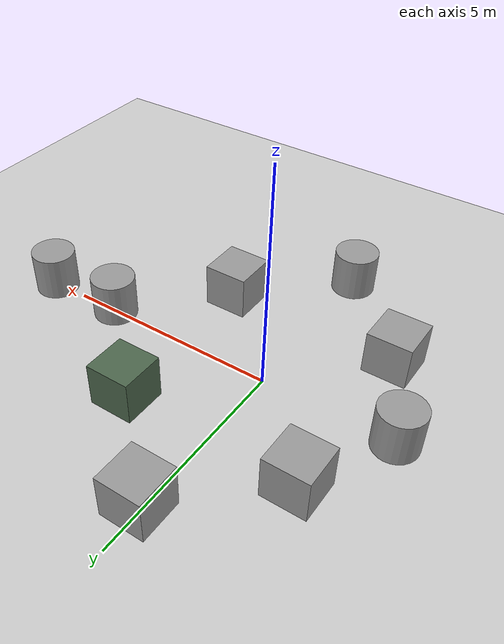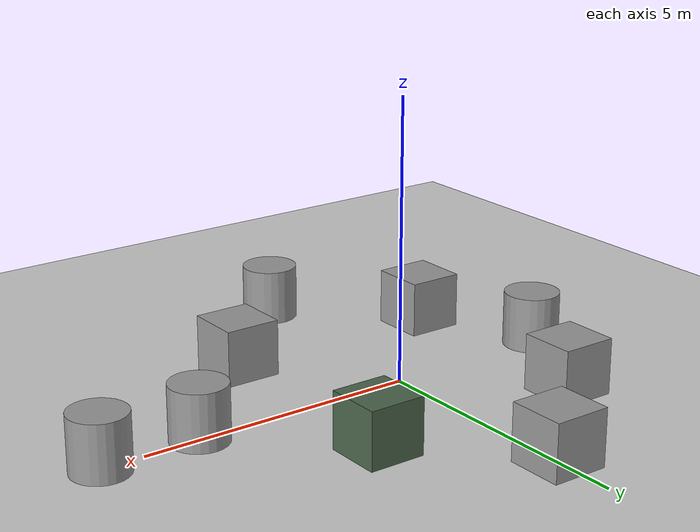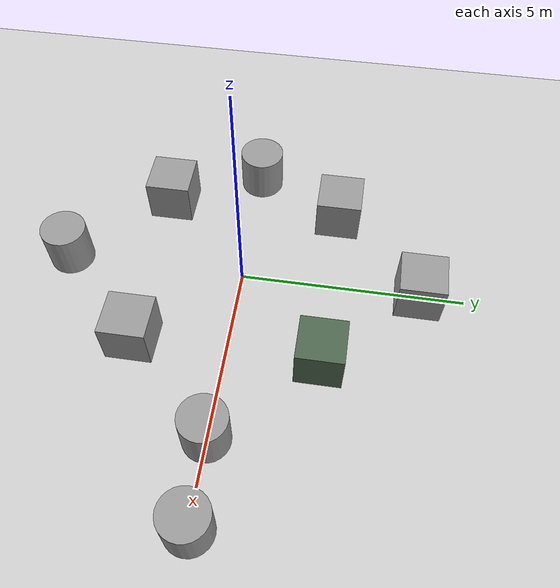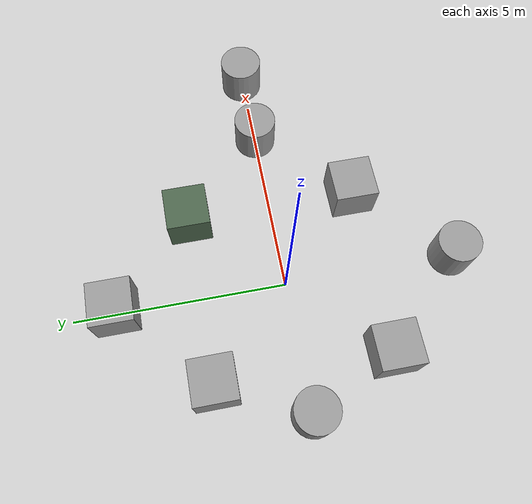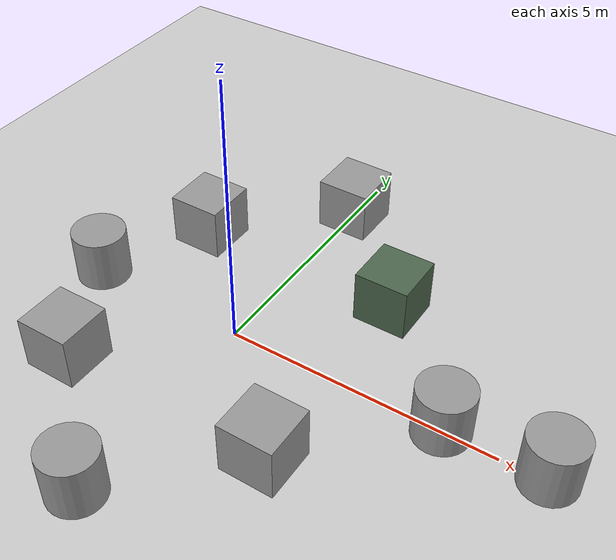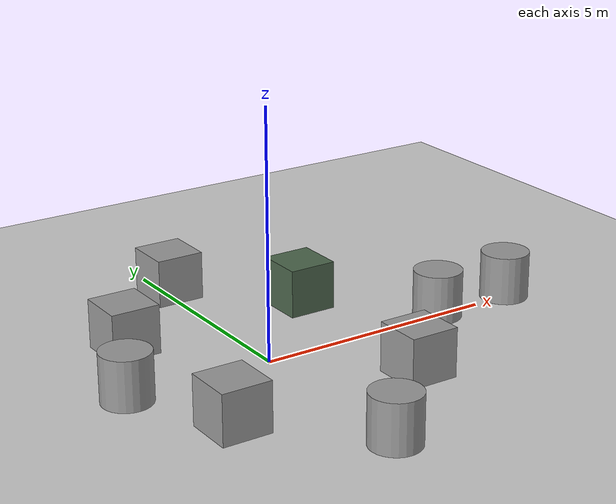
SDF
<sdf version="1.6">
 <world name="default">
  <light name="sun" type="directional">
   <pose>0 0 10 0 -0 0</pose>
   <diffuse>0.8 0.8 0.8 1</diffuse>
   <specular>0.2 0.2 0.2 1</specular>
   <attenuation>
    <range>1000</range>
    <constant>0.9</constant>
    <linear>0.01</linear>
    <quadratic>0.001</quadratic>
   </attenuation>
   <direction>0.5 0.1 -0.9</direction>
  </light>
  <model name="ground_plane">
   <static>1</static>
   <link name="link">
    <collision name="collision">
     <geometry><plane><normal>0 0 1</normal><size>100 100</size></plane></geometry>
     <surface><friction><ode><mu>100</mu><mu2>50</mu2></ode></friction></surface>
    </collision>
    <visual name="visual">
     <cast_shadows>0</cast_shadows>
     <geometry><plane><normal>0 0 1</normal><size>100 100</size></plane></geometry>
     <material>
      <script><uri>file://media/materials/scripts/gazebo.material</uri><name>Gazebo/Grey</name></script>
     </material>
    </visual>
    <velocity_decay><linear>0</linear><angular>0</angular></velocity_decay>
   </link>
  </model>
  <physics name="default_physics" default="0" type="ode">
   <max_step_size>0.01</max_step_size>
   <real_time_factor>1</real_time_factor>
   <real_time_update_rate>100</real_time_update_rate>
  </physics>
  <scene><ambient>0.4 0.4 0.4 1</ambient><background>0.7 0.7 0.7 1</background><shadows>1</shadows></scene>
  <model name="unit_box_1">
   <pose>2 -2 0.5 0 -0 0</pose>
   <link name="link">
    <inertial>
     <mass>1</mass>
     <inertia><ixx>1</ixx><ixy>0</ixy><ixz>0</ixz><iyy>1</iyy><iyz>0</iyz><izz>1</izz></inertia>
    </inertial>
    <collision name="collision"><geometry><box><size>1 1 1</size></box></geometry></collision>
    <visual name="visual">
     <geometry><box><size>1 1 1</size></box></geometry>
     <material>
      <script><uri>file://media/materials/scripts/gazebo.material</uri><name>Gazebo/Grey</name></script>
     </material>
    </visual>
    <velocity_decay><linear>0</linear><angular>0</angular></velocity_decay>
   </link>
   <static>0</static>
  </model>
  <model name="unit_box_2">
   <pose>-2 -2 0.5 0 -0 0</pose>
   <link name="link">
    <inertial>
     <mass>1</mass>
     <inertia><ixx>1</ixx><ixy>0</ixy><ixz>0</ixz><iyy>1</iyy><iyz>0</iyz><izz>1</izz></inertia>
    </inertial>
    <collision name="collision"><geometry><box><size>1 1 1</size></box></geometry></collision>
    <visual name="visual">
     <geometry><box><size>1 1 1</size></box></geometry>
     <material>
      <script><uri>file://media/materials/scripts/gazebo.material</uri><name>Gazebo/Grey</name></script>
     </material>
    </visual>
    <velocity_decay><linear>0</linear><angular>0</angular></velocity_decay>
   </link>
   <static>0</static>
  </model>
  <model name="unit_box_3">
   <pose>-2 2 0.5 0 -0 0</pose>
   <link name="link">
    <inertial>
     <mass>1</mass>
     <inertia><ixx>1</ixx><ixy>0</ixy><ixz>0</ixz><iyy>1</iyy><iyz>0</iyz><izz>1</izz></inertia>
    </inertial>
    <collision name="collision"><geometry><box><size>1 1 1</size></box></geometry></collision>
    <visual name="visual">
     <geometry><box><size>1 1 1</size></box></geometry>
     <material>
      <script><uri>file://media/materials/scripts/gazebo.material</uri><name>Gazebo/Grey</name></script>
     </material>
    </visual>
    <velocity_decay><linear>0</linear><angular>0</angular></velocity_decay>
   </link>
   <static>0</static>
  </model>
  <model name="unit_cylinder_1">
   <pose>4 0 0.49912 0 -0 0</pose>
   <link name="link">
    <inertial>
     <mass>1</mass>
     <inertia><ixx>1</ixx><ixy>0</ixy><ixz>0</ixz><iyy>1</iyy><iyz>0</iyz><izz>1</izz></inertia>
    </inertial>
    <collision name="collision">
     <geometry><cylinder><radius>0.5</radius><length>1</length></cylinder></geometry>
    </collision>
    <visual name="visual">
     <geometry><cylinder><radius>0.5</radius><length>1</length></cylinder></geometry>
     <material>
      <script><uri>file://media/materials/scripts/gazebo.material</uri><name>Gazebo/Grey</name></script>
     </material>
    </visual>
    <velocity_decay><linear>0</linear><angular>0</angular></velocity_decay>
   </link>
   <static>0</static>
  </model>
  <model name="unit_cylinder_3">
   <pose>-3 0 0.49912 0 -0 0</pose>
   <link name="link">
    <inertial>
     <mass>1</mass>
     <inertia><ixx>1</ixx><ixy>0</ixy><ixz>0</ixz><iyy>1</iyy><iyz>0</iyz><izz>1</izz></inertia>
    </inertial>
    <collision name="collision">
     <geometry><cylinder><radius>0.5</radius><length>1</length></cylinder></geometry>
    </collision>
    <visual name="visual">
     <geometry><cylinder><radius>0.5</radius><length>1</length></cylinder></geometry>
     <material>
      <script><uri>file://media/materials/scripts/gazebo.material</uri><name>Gazebo/Grey</name></script>
     </material>
    </visual>
    <velocity_decay><linear>0</linear><angular>0</angular></velocity_decay>
   </link>
   <static>0</static>
  </model>
  <model name="unit_cylinder_4">
   <pose>0 -4 0.49912 0 -0 0</pose>
   <link name="link">
    <inertial>
     <mass>1</mass>
     <inertia><ixx>1</ixx><ixy>0</ixy><ixz>0</ixz><iyy>1</iyy><iyz>0</iyz><izz>1</izz></inertia>
    </inertial>
    <collision name="collision">
     <geometry><cylinder><radius>0.5</radius><length>1</length></cylinder></geometry>
    </collision>
    <visual name="visual">
     <geometry><cylinder><radius>0.5</radius><length>1</length></cylinder></geometry>
     <material>
      <script><uri>file://media/materials/scripts/gazebo.material</uri><name>Gazebo/Grey</name></script>
     </material>
    </visual>
    <velocity_decay><linear>0</linear><angular>0</angular></velocity_decay>
   </link>
   <static>0</static>
  </model>
  <gravity>0 0 -9.8</gravity>
  <magnetic_field>6e-06 2.3e-05 -4.2e-05</magnetic_field>
  <atmosphere type="adiabatic"/>
  <spherical_coordinates>
   <surface_model>EARTH_WGS84</surface_model>
   <latitude_deg>0</latitude_deg>
   <longitude_deg>0</longitude_deg>
   <elevation>0</elevation>
   <heading_deg>0</heading_deg>
  </spherical_coordinates>
  <model name="unit_box_0">
   <pose>0.053382 3.96143 0.5 0 -0 0</pose>
   <link name="link">
    <inertial>
     <mass>1</mass>
     <inertia>
      <ixx>0.166667</ixx>
      <ixy>0</ixy>
      <ixz>0</ixz>
      <iyy>0.166667</iyy>
      <iyz>0</iyz>
      <izz>0.166667</izz>
     </inertia>
    </inertial>
    <collision name="collision"><geometry><box><size>1 1 1</size></box></geometry></collision>
    <visual name="visual">
     <geometry><box><size>1 1 1</size></box></geometry>
     <material>
      <script><name>Gazebo/Grey</name><uri>file://media/materials/scripts/gazebo.material</uri></script>
     </material>
    </visual>
   </link>
  </model>
  <model name="unit_box_4_0">
   <link name="link">
    <inertial>
     <mass>1</mass>
     <inertia><ixx>1</ixx><ixy>0</ixy><ixz>0</ixz><iyy>1</iyy><iyz>0</iyz><izz>1</izz></inertia>
    </inertial>
    <velocity_decay><linear>0</linear><angular>0</angular></velocity_decay>
    <visual name="visual">
     <geometry><box><size>1 1 1</size></box></geometry>
     <material>
      <script><uri>file://media/materials/scripts/gazebo.material</uri><name>Gazebo/Grey</name></script>
      <ambient>0.3 0.4 0.3 1</ambient>
      <diffuse>0.7 0.7 0.7 1</diffuse>
      <specular>0.5 0.01 0.01 1</specular>
      <emissive>0 0 0 1</emissive>
      <shader type="vertex"><normal_map>__default__</normal_map></shader>
     </material>
    </visual>
    <visual name="ModelPreview_8::link::visual_2">
     <geometry><box><size>1 1 1</size></box></geometry>
     <material>
      <script><uri>file://media/materials/scripts/gazebo.material</uri><name>Gazebo/Grey</name></script>
      <ambient>0.3 0.3 0.3 1</ambient>
      <diffuse>0.7 0.7 0.7 1</diffuse>
      <specular>0.01 0.01 0.01 1</specular>
      <emissive>0 0 0 1</emissive>
      <shader type="vertex"><normal_map>__default__</normal_map></shader>
     </material>
    </visual>
    <visual name="ModelPreview_8::link::visual_1">
     <geometry><box><size>1 1 1</size></box></geometry>
     <material>
      <script><uri>file://media/materials/scripts/gazebo.material</uri><name>Gazebo/Grey</name></script>
      <ambient>0.3 0.3 0.3 1</ambient>
      <diffuse>0.7 0.7 0.7 1</diffuse>
      <specular>0.01 0.01 0.01 1</specular>
      <emissive>0 0 0 1</emissive>
      <shader type="vertex"><normal_map>__default__</normal_map></shader>
     </material>
    </visual>
    <collision name="collision">
     <geometry><box><size>1 1 1</size></box></geometry>
     <surface>
      <friction>
       <ode><mu>1</mu><mu2>1</mu2><fdir1>0 0 0</fdir1><slip1>0</slip1><slip2>0</slip2></ode>
       <torsional>
        <coefficient>1</coefficient>
        <patch_radius>0</patch_radius>
        <surface_radius>0</surface_radius>
        <use_patch_radius>1</use_patch_radius>
        <ode><slip>0</slip></ode>
       </torsional>
      </friction>
      <bounce><restitution_coefficient>0</restitution_coefficient><threshold>1e+06</threshold></bounce>
      <contact>
       <collide_without_contact>0</collide_without_contact>
       <collide_without_contact_bitmask>1</collide_without_contact_bitmask>
       <collide_bitmask>1</collide_bitmask>
       <ode>
        <soft_cfm>0</soft_cfm>
        <soft_erp>0.2</soft_erp>
        <kp>1e+13</kp>
        <kd>1</kd>
        <max_vel>0.01</max_vel>
        <min_depth>0</min_depth>
       </ode>
       <bullet>
        <split_impulse>1</split_impulse>
        <split_impulse_penetration_threshold>-0.01</split_impulse_penetration_threshold>
        <soft_cfm>0</soft_cfm>
        <soft_erp>0.2</soft_erp>
        <kp>1e+13</kp>
        <kd>1</kd>
       </bullet>
      </contact>
     </surface>
    </collision>
   </link>
   <static>0</static>
   <pose>2 2 0.5 0 -0 0</pose>
  </model>
  <model name="unit_cylinder_0">
   <pose>5.77921 0.043918 0.5 0 -0 0</pose>
   <link name="link">
    <inertial>
     <mass>1</mass>
     <inertia><ixx>0.145833</ixx><ixy>0</ixy><ixz>0</ixz><iyy>0.145833</iyy><iyz>0</iyz><izz>0.125</izz></inertia>
    </inertial>
    <collision name="collision">
     <geometry><cylinder><radius>0.5</radius><length>1</length></cylinder></geometry>
    </collision>
    <visual name="visual">
     <geometry><cylinder><radius>0.5</radius><length>1</length></cylinder></geometry>
     <material>
      <script><name>Gazebo/Grey</name><uri>file://media/materials/scripts/gazebo.material</uri></script>
     </material>
    </visual>
   </link>
  </model>
 </world>
</sdf>
